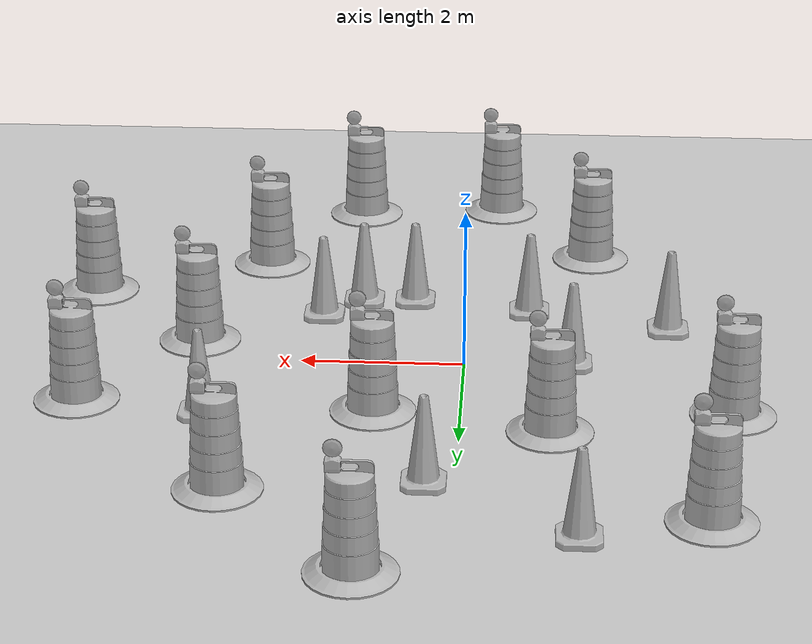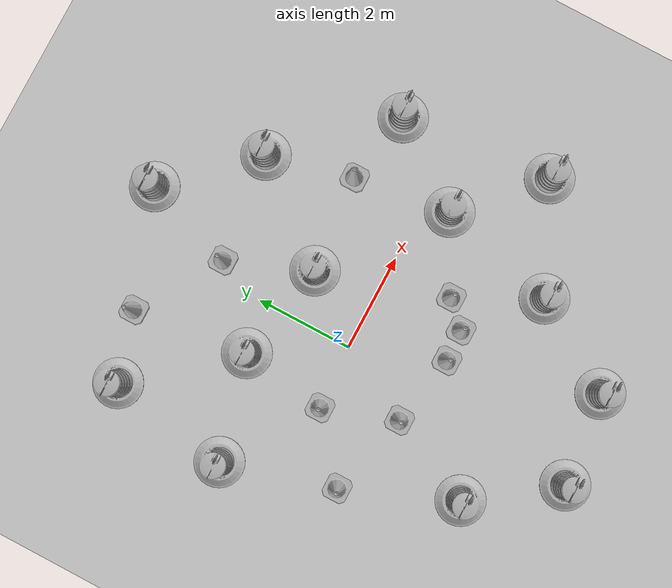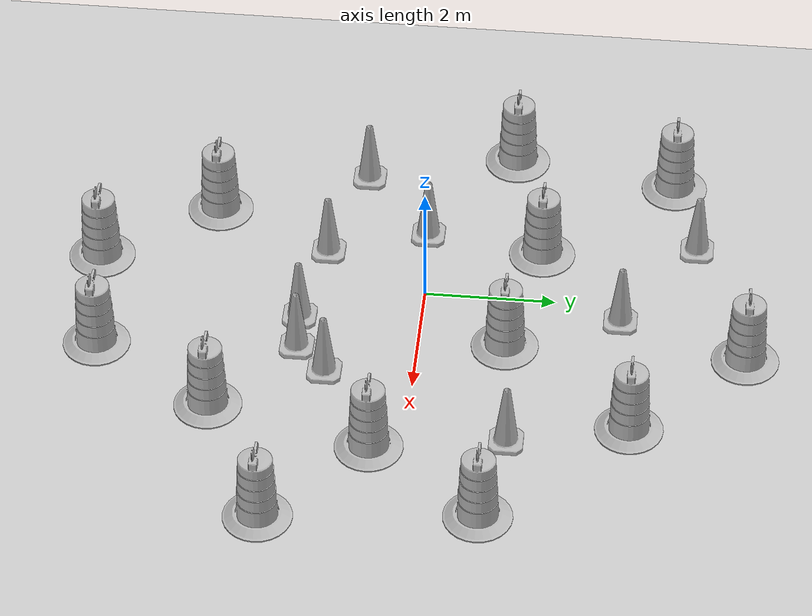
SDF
<sdf version="1.7">
 <world name="default">
  <light name="sun" type="directional">
   <pose>0 0 10 0 -0 0</pose>
   <diffuse>0.8 0.8 0.8 1</diffuse>
   <specular>0.2 0.2 0.2 1</specular>
   <attenuation>
    <range>1000</range>
    <constant>0.9</constant>
    <linear>0.01</linear>
    <quadratic>0.001</quadratic>
   </attenuation>
   <direction>-0.5 0.1 -0.9</direction>
   <spot><inner_angle>0</inner_angle><outer_angle>0</outer_angle><falloff>0</falloff></spot>
  </light>
  <model name="ground_plane">
   <static>1</static>
   <link name="link">
    <collision name="collision">
     <geometry><plane><normal>0 0 1</normal><size>100 100</size></plane></geometry>
     <surface><friction><ode><mu>100</mu><mu2>50</mu2></ode></friction></surface>
    </collision>
    <visual name="visual">
     <cast_shadows>0</cast_shadows>
     <geometry><plane><normal>0 0 1</normal><size>100 100</size></plane></geometry>
     <material>
      <script><uri>file://media/materials/scripts/gazebo.material</uri><name>Gazebo/Grey</name></script>
     </material>
    </visual>
   </link>
  </model>
  <gravity>0 0 -9.8</gravity>
  <magnetic_field>6e-06 2.3e-05 -4.2e-05</magnetic_field>
  <atmosphere type="adiabatic"/>
  <physics type="ode">
   <max_step_size>0.001</max_step_size>
   <real_time_factor>1</real_time_factor>
   <real_time_update_rate>1000</real_time_update_rate>
  </physics>
  <scene><ambient>0.4 0.4 0.4 1</ambient><background>0.7 0.7 0.7 1</background><shadows>1</shadows></scene>
  <spherical_coordinates>
   <surface_model>EARTH_WGS84</surface_model>
   <latitude_deg>0</latitude_deg>
   <longitude_deg>0</longitude_deg>
   <elevation>0</elevation>
   <heading_deg>0</heading_deg>
  </spherical_coordinates>
  <model name="Construction Cone">
   <link name="link">
    <collision name="collision">
     <geometry>
      <mesh><scale>10 10 10</scale><uri>model://construction_cone/meshes/construction_cone.dae</uri></mesh>
     </geometry>
    </collision>
    <visual name="visual">
     <geometry>
      <mesh><scale>10 10 10</scale><uri>model://construction_cone/meshes/construction_cone.dae</uri></mesh>
     </geometry>
    </visual>
    <inertial>
     <inertia><ixx>1</ixx><ixy>0</ixy><ixz>0</ixz><iyy>1</iyy><iyz>0</iyz><izz>1</izz></inertia>
     <mass>1</mass>
    </inertial>
   </link>
   <pose>0.685214 -1.84041 -1e-05 -1e-06 0 0</pose>
  </model>
  <model name="Construction Cone_0">
   <link name="link">
    <collision name="collision">
     <geometry>
      <mesh><scale>10 10 10</scale><uri>model://construction_cone/meshes/construction_cone.dae</uri></mesh>
     </geometry>
    </collision>
    <visual name="visual">
     <geometry>
      <mesh><scale>10 10 10</scale><uri>model://construction_cone/meshes/construction_cone.dae</uri></mesh>
     </geometry>
    </visual>
    <inertial>
     <inertia><ixx>1</ixx><ixy>0</ixy><ixz>0</ixz><iyy>1</iyy><iyz>0</iyz><izz>1</izz></inertia>
     <mass>1</mass>
    </inertial>
   </link>
   <pose>1.34486 -1.8069 -0 0 -1e-06 0</pose>
  </model>
  <model name="Construction Cone_1">
   <link name="link">
    <collision name="collision">
     <geometry>
      <mesh><scale>10 10 10</scale><uri>model://construction_cone/meshes/construction_cone.dae</uri></mesh>
     </geometry>
    </collision>
    <visual name="visual">
     <geometry>
      <mesh><scale>10 10 10</scale><uri>model://construction_cone/meshes/construction_cone.dae</uri></mesh>
     </geometry>
    </visual>
    <inertial>
     <inertia><ixx>1</ixx><ixy>0</ixy><ixz>0</ixz><iyy>1</iyy><iyz>0</iyz><izz>1</izz></inertia>
     <mass>1</mass>
    </inertial>
   </link>
   <pose>1.82924 -1.33603 -0 0 -1e-06 0</pose>
  </model>
  <model name="Construction Barrel">
   <link name="link">
    <inertial>
     <pose>0 0 0.4 0 -0 0</pose>
     <mass>500</mass>
     <inertia><ixx>51.2096</ixx><iyy>51.2096</iyy><izz>25</izz><ixy>0</ixy><ixz>0</ixz><iyz>0</iyz></inertia>
    </inertial>
    <collision name="collision">
     <geometry><mesh><uri>model://construction_barrel/meshes/construction_barrel.dae</uri></mesh></geometry>
    </collision>
    <visual name="visual">
     <geometry><mesh><uri>model://construction_barrel/meshes/construction_barrel.dae</uri></mesh></geometry>
    </visual>
   </link>
   <pose>1.02993 1.30165 -0 1e-06 -1e-06 -2.6e-05</pose>
  </model>
  <model name="Construction Barrel_0">
   <link name="link">
    <inertial>
     <pose>0 0 0.4 0 -0 0</pose>
     <mass>500</mass>
     <inertia><ixx>51.2096</ixx><iyy>51.2096</iyy><izz>25</izz><ixy>0</ixy><ixz>0</ixz><iyz>0</iyz></inertia>
    </inertial>
    <collision name="collision">
     <geometry><mesh><uri>model://construction_barrel/meshes/construction_barrel.dae</uri></mesh></geometry>
    </collision>
    <visual name="visual">
     <geometry><mesh><uri>model://construction_barrel/meshes/construction_barrel.dae</uri></mesh></geometry>
    </visual>
   </link>
   <pose>-1.04438 1.71811 0 0 0 -2.4e-05</pose>
  </model>
  <model name="Construction Barrel_1">
   <link name="link">
    <inertial>
     <pose>0 0 0.4 0 -0 0</pose>
     <mass>500</mass>
     <inertia><ixx>51.2096</ixx><iyy>51.2096</iyy><izz>25</izz><ixy>0</ixy><ixz>0</ixz><iyz>0</iyz></inertia>
    </inertial>
    <collision name="collision">
     <geometry><mesh><uri>model://construction_barrel/meshes/construction_barrel.dae</uri></mesh></geometry>
    </collision>
    <visual name="visual">
     <geometry><mesh><uri>model://construction_barrel/meshes/construction_barrel.dae</uri></mesh></geometry>
    </visual>
   </link>
   <pose>3.3202 -0.513153 -5e-06 -9e-06 -9e-06 -2.6e-05</pose>
  </model>
  <model name="Construction Cone_2">
   <link name="link">
    <collision name="collision">
     <geometry>
      <mesh><scale>10 10 10</scale><uri>model://construction_cone/meshes/construction_cone.dae</uri></mesh>
     </geometry>
    </collision>
    <visual name="visual">
     <geometry>
      <mesh><scale>10 10 10</scale><uri>model://construction_cone/meshes/construction_cone.dae</uri></mesh>
     </geometry>
    </visual>
    <inertial>
     <inertia><ixx>1</ixx><ixy>0</ixy><ixz>0</ixz><iyy>1</iyy><iyz>0</iyz><izz>1</izz></inertia>
     <mass>1</mass>
    </inertial>
   </link>
   <pose>0.354958 3.00492 -2e-06 -2e-06 -0 -0</pose>
  </model>
  <model name="Construction Cone_3">
   <link name="link">
    <collision name="collision">
     <geometry>
      <mesh><scale>10 10 10</scale><uri>model://construction_cone/meshes/construction_cone.dae</uri></mesh>
     </geometry>
    </collision>
    <visual name="visual">
     <geometry>
      <mesh><scale>10 10 10</scale><uri>model://construction_cone/meshes/construction_cone.dae</uri></mesh>
     </geometry>
    </visual>
    <inertial>
     <inertia><ixx>1</ixx><ixy>0</ixy><ixz>0</ixz><iyy>1</iyy><iyz>0</iyz><izz>1</izz></inertia>
     <mass>1</mass>
    </inertial>
   </link>
   <pose>-1.31283 -0.066329 -0 1e-06 -0 0</pose>
  </model>
  <model name="Construction Cone_4">
   <link name="link">
    <collision name="collision">
     <geometry>
      <mesh><scale>10 10 10</scale><uri>model://construction_cone/meshes/construction_cone.dae</uri></mesh>
     </geometry>
    </collision>
    <visual name="visual">
     <geometry>
      <mesh><scale>10 10 10</scale><uri>model://construction_cone/meshes/construction_cone.dae</uri></mesh>
     </geometry>
    </visual>
    <inertial>
     <inertia><ixx>1</ixx><ixy>0</ixy><ixz>0</ixz><iyy>1</iyy><iyz>0</iyz><izz>1</izz></inertia>
     <mass>1</mass>
    </inertial>
   </link>
   <pose>-0.794061 -1.56376 -8e-06 0 1e-06 0</pose>
  </model>
  <model name="Construction Barrel_2">
   <link name="link">
    <inertial>
     <pose>0 0 0.4 0 -0 0</pose>
     <mass>500</mass>
     <inertia><ixx>51.2096</ixx><iyy>51.2096</iyy><izz>25</izz><ixy>0</ixy><ixz>0</ixz><iyz>0</iyz></inertia>
    </inertial>
    <collision name="collision">
     <geometry><mesh><uri>model://construction_barrel/meshes/construction_barrel.dae</uri></mesh></geometry>
    </collision>
    <visual name="visual">
     <geometry><mesh><uri>model://construction_barrel/meshes/construction_barrel.dae</uri></mesh></geometry>
    </visual>
   </link>
   <pose>1.52893 -4.81972 -2e-06 7e-06 -4e-06 -2e-05</pose>
  </model>
  <model name="Construction Barrel_3">
   <link name="link">
    <inertial>
     <pose>0 0 0.4 0 -0 0</pose>
     <mass>500</mass>
     <inertia><ixx>51.2096</ixx><iyy>51.2096</iyy><izz>25</izz><ixy>0</ixy><ixz>0</ixz><iyz>0</iyz></inertia>
    </inertial>
    <collision name="collision">
     <geometry><mesh><uri>model://construction_barrel/meshes/construction_barrel.dae</uri></mesh></geometry>
    </collision>
    <visual name="visual">
     <geometry><mesh><uri>model://construction_barrel/meshes/construction_barrel.dae</uri></mesh></geometry>
    </visual>
   </link>
   <pose>2.60734 3.25419 0 1e-06 1e-06 -1.6e-05</pose>
  </model>
  <model name="Construction Cone_5">
   <link name="link">
    <collision name="collision">
     <geometry>
      <mesh><scale>10 10 10</scale><uri>model://construction_cone/meshes/construction_cone.dae</uri></mesh>
     </geometry>
    </collision>
    <visual name="visual">
     <geometry>
      <mesh><scale>10 10 10</scale><uri>model://construction_cone/meshes/construction_cone.dae</uri></mesh>
     </geometry>
    </visual>
    <inertial>
     <inertia><ixx>1</ixx><ixy>0</ixy><ixz>0</ixz><iyy>1</iyy><iyz>0</iyz><izz>1</izz></inertia>
     <mass>1</mass>
    </inertial>
   </link>
   <pose>3.04021 1.4796 -0 0 -1e-06 0</pose>
  </model>
  <model name="Construction Barrel_4">
   <link name="link">
    <inertial>
     <pose>0 0 0.4 0 -0 0</pose>
     <mass>500</mass>
     <inertia><ixx>51.2096</ixx><iyy>51.2096</iyy><izz>25</izz><ixy>0</ixy><ixz>0</ixz><iyz>0</iyz></inertia>
    </inertial>
    <collision name="collision">
     <geometry><mesh><uri>model://construction_barrel/meshes/construction_barrel.dae</uri></mesh></geometry>
    </collision>
    <visual name="visual">
     <geometry><mesh><uri>model://construction_barrel/meshes/construction_barrel.dae</uri></mesh></geometry>
    </visual>
   </link>
   <pose>2.67837 -2.97432 -0 0 0 -1.1e-05</pose>
  </model>
  <model name="Construction Barrel_5">
   <link name="link">
    <inertial>
     <pose>0 0 0.4 0 -0 0</pose>
     <mass>500</mass>
     <inertia><ixx>51.2096</ixx><iyy>51.2096</iyy><izz>25</izz><ixy>0</ixy><ixz>0</ixz><iyz>0</iyz></inertia>
    </inertial>
    <collision name="collision">
     <geometry><mesh><uri>model://construction_barrel/meshes/construction_barrel.dae</uri></mesh></geometry>
    </collision>
    <visual name="visual">
     <geometry><mesh><uri>model://construction_barrel/meshes/construction_barrel.dae</uri></mesh></geometry>
    </visual>
   </link>
   <pose>-1.61939 -3.35889 -0 0 0 -1.2e-05</pose>
  </model>
  <model name="Construction Cone_6">
   <link name="link">
    <collision name="collision">
     <geometry>
      <mesh><scale>10 10 10</scale><uri>model://construction_cone/meshes/construction_cone.dae</uri></mesh>
     </geometry>
    </collision>
    <visual name="visual">
     <geometry>
      <mesh><scale>10 10 10</scale><uri>model://construction_cone/meshes/construction_cone.dae</uri></mesh>
     </geometry>
    </visual>
    <inertial>
     <inertia><ixx>1</ixx><ixy>0</ixy><ixz>0</ixz><iyy>1</iyy><iyz>0</iyz><izz>1</izz></inertia>
     <mass>1</mass>
    </inertial>
   </link>
   <pose>-2.54645 -1.10836 0 -0 -0 -0</pose>
  </model>
  <model name="Construction Barrel_6">
   <link name="link">
    <inertial>
     <pose>0 0 0.4 0 -0 0</pose>
     <mass>500</mass>
     <inertia><ixx>51.2096</ixx><iyy>51.2096</iyy><izz>25</izz><ixy>0</ixy><ixz>0</ixz><iyz>0</iyz></inertia>
    </inertial>
    <collision name="collision">
     <geometry><mesh><uri>model://construction_barrel/meshes/construction_barrel.dae</uri></mesh></geometry>
    </collision>
    <visual name="visual">
     <geometry><mesh><uri>model://construction_barrel/meshes/construction_barrel.dae</uri></mesh></geometry>
    </visual>
   </link>
   <pose>-3.18355 1.17998 -5e-06 -9e-06 -9e-06 -8e-06</pose>
  </model>
  <model name="Construction Barrel_7">
   <link name="link">
    <inertial>
     <pose>0 0 0.4 0 -0 0</pose>
     <mass>500</mass>
     <inertia><ixx>51.2096</ixx><iyy>51.2096</iyy><izz>25</izz><ixy>0</ixy><ixz>0</ixz><iyz>0</iyz></inertia>
    </inertial>
    <collision name="collision">
     <geometry><mesh><uri>model://construction_barrel/meshes/construction_barrel.dae</uri></mesh></geometry>
    </collision>
    <visual name="visual">
     <geometry><mesh><uri>model://construction_barrel/meshes/construction_barrel.dae</uri></mesh></geometry>
    </visual>
   </link>
   <pose>-2.75975 3.68156 -2e-06 7e-06 -4e-06 -1.2e-05</pose>
  </model>
  <model name="Construction Cone_7">
   <link name="link">
    <collision name="collision">
     <geometry>
      <mesh><scale>10 10 10</scale><uri>model://construction_cone/meshes/construction_cone.dae</uri></mesh>
     </geometry>
    </collision>
    <visual name="visual">
     <geometry>
      <mesh><scale>10 10 10</scale><uri>model://construction_cone/meshes/construction_cone.dae</uri></mesh>
     </geometry>
    </visual>
    <inertial>
     <inertia><ixx>1</ixx><ixy>0</ixy><ixz>0</ixz><iyy>1</iyy><iyz>0</iyz><izz>1</izz></inertia>
     <mass>1</mass>
    </inertial>
   </link>
   <pose>-1.3378 4.09539 -0 0 -1e-06 0</pose>
  </model>
  <model name="Construction Barrel_8">
   <link name="link">
    <inertial>
     <pose>0 0 0.4 0 -0 0</pose>
     <mass>500</mass>
     <inertia><ixx>51.2096</ixx><iyy>51.2096</iyy><izz>25</izz><ixy>0</ixy><ixz>0</ixz><iyz>0</iyz></inertia>
    </inertial>
    <collision name="collision">
     <geometry><mesh><uri>model://construction_barrel/meshes/construction_barrel.dae</uri></mesh></geometry>
    </collision>
    <visual name="visual">
     <geometry><mesh><uri>model://construction_barrel/meshes/construction_barrel.dae</uri></mesh></geometry>
    </visual>
   </link>
   <pose>1.01158 4.91061 -0 1e-06 -1e-06 -6e-06</pose>
  </model>
  <model name="Construction Barrel_9">
   <link name="link">
    <inertial>
     <pose>0 0 0.4 0 -0 0</pose>
     <mass>500</mass>
     <inertia><ixx>51.2096</ixx><iyy>51.2096</iyy><izz>25</izz><ixy>0</ixy><ixz>0</ixz><iyz>0</iyz></inertia>
    </inertial>
    <collision name="collision">
     <geometry><mesh><uri>model://construction_barrel/meshes/construction_barrel.dae</uri></mesh></geometry>
    </collision>
    <visual name="visual">
     <geometry><mesh><uri>model://construction_barrel/meshes/construction_barrel.dae</uri></mesh></geometry>
    </visual>
   </link>
   <pose>4.55917 1.19098 -1e-06 0 5e-06 -6e-06</pose>
  </model>
  <model name="Construction Barrel_10">
   <link name="link">
    <inertial>
     <pose>0 0 0.4 0 -0 0</pose>
     <mass>500</mass>
     <inertia><ixx>51.2096</ixx><iyy>51.2096</iyy><izz>25</izz><ixy>0</ixy><ixz>0</ixz><iyz>0</iyz></inertia>
    </inertial>
    <collision name="collision">
     <geometry><mesh><uri>model://construction_barrel/meshes/construction_barrel.dae</uri></mesh></geometry>
    </collision>
    <visual name="visual">
     <geometry><mesh><uri>model://construction_barrel/meshes/construction_barrel.dae</uri></mesh></geometry>
    </visual>
   </link>
   <pose>4.8495 -1.95721 -2e-06 -0 7e-06 -1e-06</pose>
  </model>
  <model name="Construction Barrel_11">
   <link name="link">
    <inertial>
     <pose>0 0 0.4 0 -0 0</pose>
     <mass>500</mass>
     <inertia><ixx>51.2096</ixx><iyy>51.2096</iyy><izz>25</izz><ixy>0</ixy><ixz>0</ixz><iyz>0</iyz></inertia>
    </inertial>
    <collision name="collision">
     <geometry><mesh><uri>model://construction_barrel/meshes/construction_barrel.dae</uri></mesh></geometry>
    </collision>
    <visual name="visual">
     <geometry><mesh><uri>model://construction_barrel/meshes/construction_barrel.dae</uri></mesh></geometry>
    </visual>
   </link>
   <pose>-0.387532 -5.03687 -1e-06 0 5e-06 -4e-06</pose>
  </model>
 </world>
</sdf>
